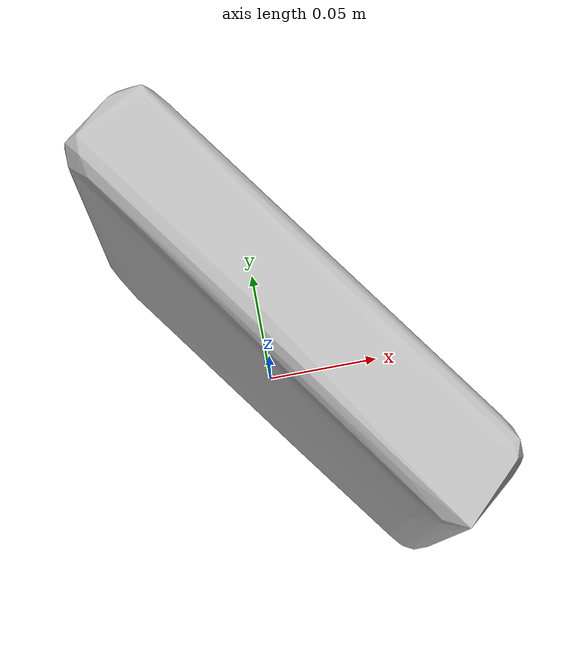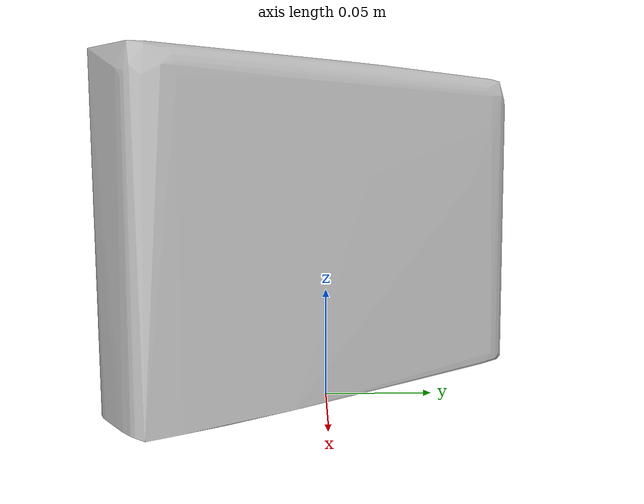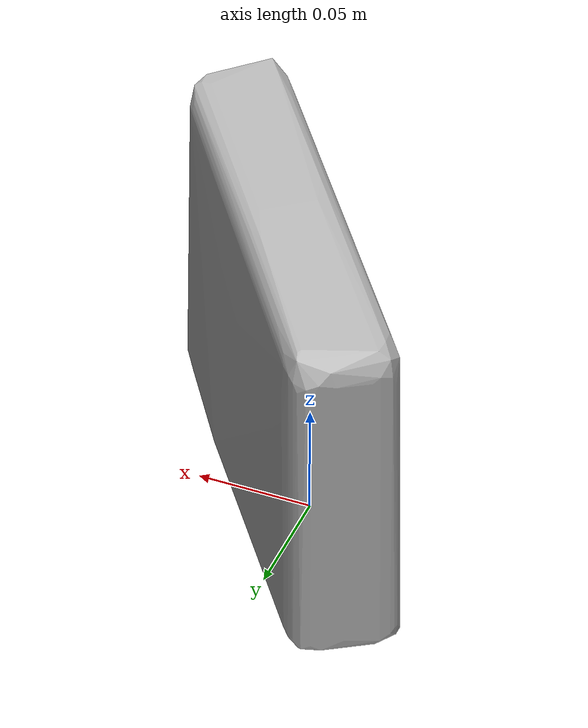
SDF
<?xml version='1.0'?>
<sdf version="1.4">
  <model name="eating_right_for_healthy_living_apple">
    <static>false</static>
    <link name="link">
      <inertial>
        <pose>0.008781182508736742 -0.0004849372573316922 0.07628880469049307 1.554867799380648 -0.011035766594139955 -2.5318917967157013</pose>
        <mass>0.14238033117184942</mass>
        <inertia>
          <ixx>0.0007312821758546448</ixx>
          <ixy>-8.49521333056065e-22</ixy>
          <ixz>9.829066415175856e-20</ixz>
          <iyy>0.0005080048124538147</iyy>
          <iyz>1.651381724311644e-21</iyz>
          <izz>0.0002776588363263886</izz>
        </inertia>
      </inertial>
      <collision name="collision">
        <geometry>
          <mesh>
            <!-- Use a downsampled mesh for collisions -->
            <uri>model:///eating_right_for_healthy_living_apple/eating_right_for_healthy_living_apple_250_collision.obj</uri>
	        </mesh>
        </geometry>
        <surface>
      </surface>
      </collision>
      <visual name="visual">
        <geometry>
          <mesh>
            <uri>model:///eating_right_for_healthy_living_apple/optimized_tsdf_texture_mapped_mesh.obj</uri>
	        </mesh>
        </geometry>
        <material>
          <script>
            <uri>model:///eating_right_for_healthy_living_apple/eating_right_for_healthy_living_apple.material</uri>
            <name>eating_right_for_healthy_living_apple</name>
          </script>
        </material>
      </visual>
    </link>
  </model>
</sdf>
